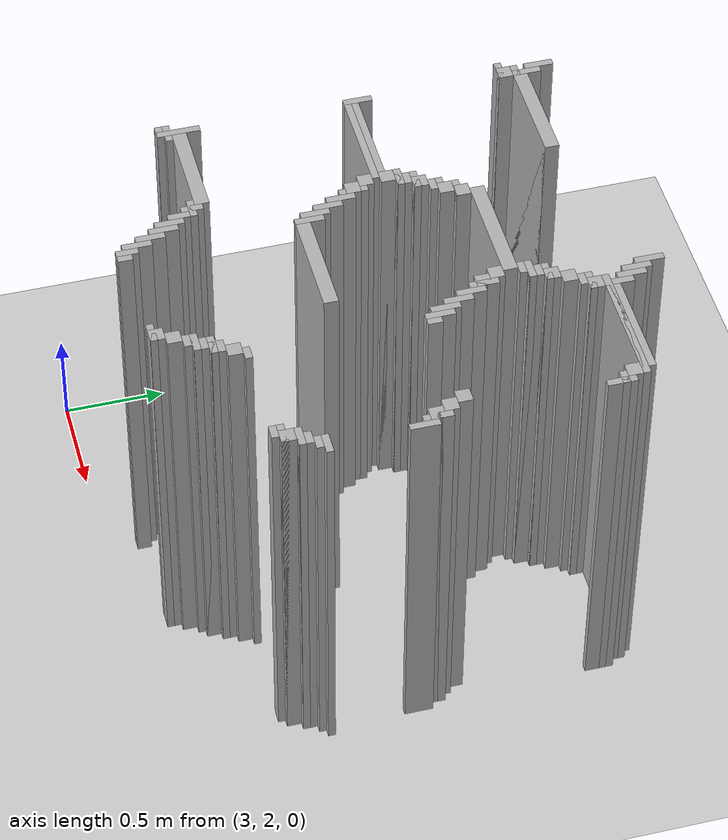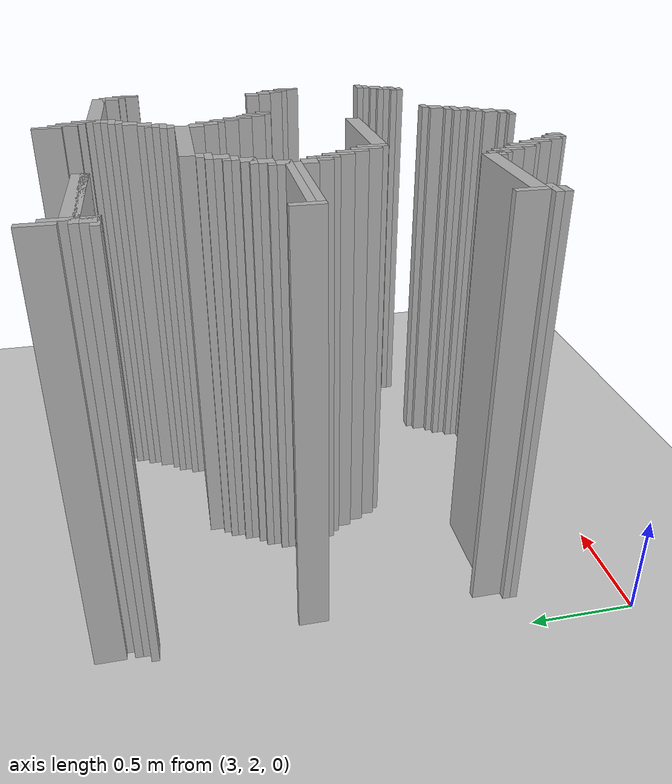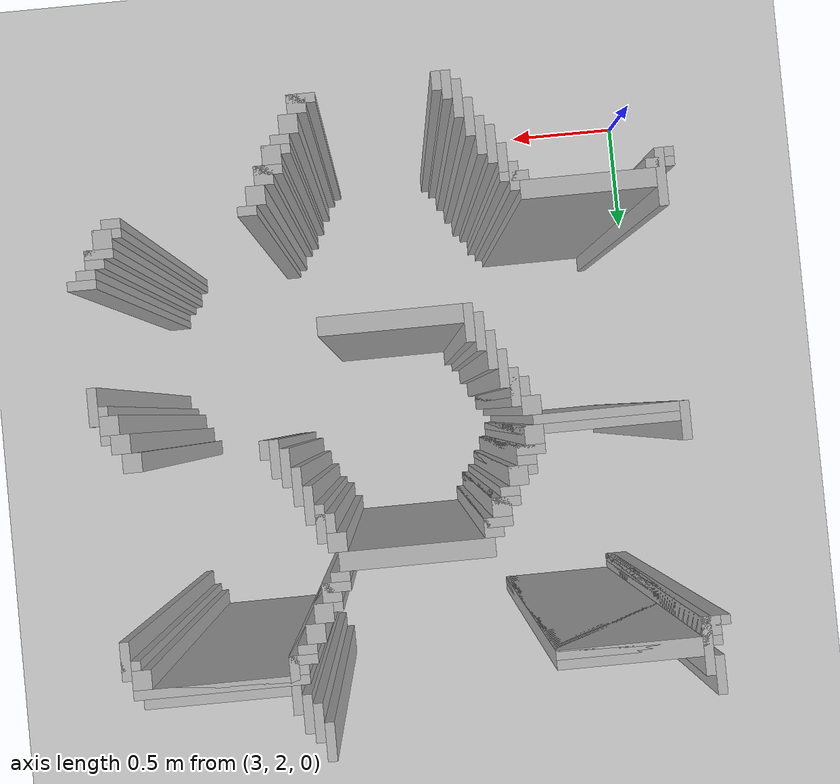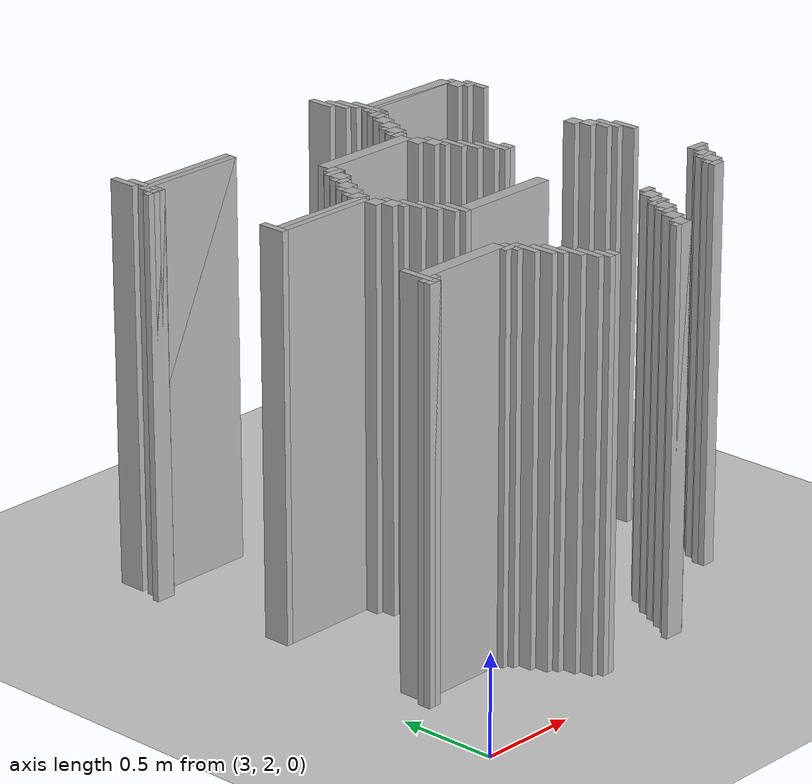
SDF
<sdf version="1.6">
 <world name="slam_world">
  <model name="ground_plane">
   <static>true</static>
   <link name="link">
    <collision name="collision">
     <geometry><plane><normal>0 0 1</normal><size>100 100</size></plane></geometry>
    </collision>
    <visual name="visual">
     <geometry><plane><normal>0 0 1</normal><size>100 100</size></plane></geometry>
     <material>
      <ambient>0.8 0.8 0.8 1</ambient>
      <diffuse>0.8 0.8 0.8 1</diffuse>
      <specular>0.8 0.8 0.8 1</specular>
     </material>
    </visual>
   </link>
  </model>
  <model name="wall_4284">
   <static>true</static>
   <pose>4.576566125290023 4.489559164733178 1.0 0 0 0</pose>
   <link name="link">
    <collision name="collision">
     <geometry><box><size>0.03480278422273782 0.13921113689095127 2.0</size></box></geometry>
    </collision>
    <visual name="visual">
     <geometry><box><size>0.03480278422273782 0.13921113689095127 2.0</size></box></geometry>
     <material><ambient>0.5 0.5 0.5 1</ambient><diffuse>0.7 0.7 0.7 1</diffuse></material>
    </visual>
   </link>
  </model>
  <model name="wall_4295">
   <static>true</static>
   <pose>4.611368909512761 4.419953596287703 1.0 0 0 0</pose>
   <link name="link">
    <collision name="collision">
     <geometry><box><size>0.03480278422273782 0.13921113689095127 2.0</size></box></geometry>
    </collision>
    <visual name="visual">
     <geometry><box><size>0.03480278422273782 0.13921113689095127 2.0</size></box></geometry>
     <material><ambient>0.5 0.5 0.5 1</ambient><diffuse>0.7 0.7 0.7 1</diffuse></material>
    </visual>
   </link>
  </model>
  <model name="wall_4305">
   <static>true</static>
   <pose>3.1844547563805103 4.385150812064965 1.0 0 0 0</pose>
   <link name="link">
    <collision name="collision">
     <geometry><box><size>0.03480278422273782 0.13921113689095127 2.0</size></box></geometry>
    </collision>
    <visual name="visual">
     <geometry><box><size>0.03480278422273782 0.13921113689095127 2.0</size></box></geometry>
     <material><ambient>0.5 0.5 0.5 1</ambient><diffuse>0.7 0.7 0.7 1</diffuse></material>
    </visual>
   </link>
  </model>
  <model name="wall_4306">
   <static>true</static>
   <pose>4.646171693735498 4.385150812064965 1.0 0 0 0</pose>
   <link name="link">
    <collision name="collision">
     <geometry><box><size>0.03480278422273782 0.13921113689095127 2.0</size></box></geometry>
    </collision>
    <visual name="visual">
     <geometry><box><size>0.03480278422273782 0.13921113689095127 2.0</size></box></geometry>
     <material><ambient>0.5 0.5 0.5 1</ambient><diffuse>0.7 0.7 0.7 1</diffuse></material>
    </visual>
   </link>
  </model>
  <model name="wall_4320">
   <static>true</static>
   <pose>3.219257540603248 4.280742459396752 1.0 0 0 0</pose>
   <link name="link">
    <collision name="collision">
     <geometry><box><size>0.03480278422273782 0.2088167053364269 2.0</size></box></geometry>
    </collision>
    <visual name="visual">
     <geometry><box><size>0.03480278422273782 0.2088167053364269 2.0</size></box></geometry>
     <material><ambient>0.5 0.5 0.5 1</ambient><diffuse>0.7 0.7 0.7 1</diffuse></material>
    </visual>
   </link>
  </model>
  <model name="wall_4321">
   <static>true</static>
   <pose>4.6809744779582365 4.280742459396752 1.0 0 0 0</pose>
   <link name="link">
    <collision name="collision">
     <geometry><box><size>0.03480278422273782 0.2088167053364269 2.0</size></box></geometry>
    </collision>
    <visual name="visual">
     <geometry><box><size>0.03480278422273782 0.2088167053364269 2.0</size></box></geometry>
     <material><ambient>0.5 0.5 0.5 1</ambient><diffuse>0.7 0.7 0.7 1</diffuse></material>
    </visual>
   </link>
  </model>
  <model name="wall_4336">
   <static>true</static>
   <pose>3.4976798143851506 4.280742459396752 1.0 0 0 0</pose>
   <link name="link">
    <collision name="collision">
     <geometry><box><size>0.5220417633410672 0.06960556844547564 2.0</size></box></geometry>
    </collision>
    <visual name="visual">
     <geometry><box><size>0.5220417633410672 0.06960556844547564 2.0</size></box></geometry>
     <material><ambient>0.5 0.5 0.5 1</ambient><diffuse>0.7 0.7 0.7 1</diffuse></material>
    </visual>
   </link>
  </model>
  <model name="wall_4337">
   <static>true</static>
   <pose>4.959396751740139 4.280742459396752 1.0 0 0 0</pose>
   <link name="link">
    <collision name="collision">
     <geometry><box><size>0.5220417633410672 0.06960556844547564 2.0</size></box></geometry>
    </collision>
    <visual name="visual">
     <geometry><box><size>0.5220417633410672 0.06960556844547564 2.0</size></box></geometry>
     <material><ambient>0.5 0.5 0.5 1</ambient><diffuse>0.7 0.7 0.7 1</diffuse></material>
    </visual>
   </link>
  </model>
  <model name="wall_4348">
   <static>true</static>
   <pose>3.4628770301624128 4.263341067285383 1.0 0 0 0</pose>
   <link name="link">
    <collision name="collision">
     <geometry><box><size>0.5916473317865429 0.03480278422273782 2.0</size></box></geometry>
    </collision>
    <visual name="visual">
     <geometry><box><size>0.5916473317865429 0.03480278422273782 2.0</size></box></geometry>
     <material><ambient>0.5 0.5 0.5 1</ambient><diffuse>0.7 0.7 0.7 1</diffuse></material>
    </visual>
   </link>
  </model>
  <model name="wall_4349">
   <static>true</static>
   <pose>4.94199535962877 4.263341067285383 1.0 0 0 0</pose>
   <link name="link">
    <collision name="collision">
     <geometry><box><size>0.6264501160092807 0.03480278422273782 2.0</size></box></geometry>
    </collision>
    <visual name="visual">
     <geometry><box><size>0.6264501160092807 0.03480278422273782 2.0</size></box></geometry>
     <material><ambient>0.5 0.5 0.5 1</ambient><diffuse>0.7 0.7 0.7 1</diffuse></material>
    </visual>
   </link>
  </model>
  <model name="wall_4360">
   <static>true</static>
   <pose>3.201856148491879 4.211136890951276 1.0 0 0 0</pose>
   <link name="link">
    <collision name="collision">
     <geometry><box><size>0.06960556844547564 0.06960556844547564 2.0</size></box></geometry>
    </collision>
    <visual name="visual">
     <geometry><box><size>0.06960556844547564 0.06960556844547564 2.0</size></box></geometry>
     <material><ambient>0.5 0.5 0.5 1</ambient><diffuse>0.7 0.7 0.7 1</diffuse></material>
    </visual>
   </link>
  </model>
  <model name="wall_4361">
   <static>true</static>
   <pose>4.663573085846868 4.211136890951276 1.0 0 0 0</pose>
   <link name="link">
    <collision name="collision">
     <geometry><box><size>0.06960556844547564 0.06960556844547564 2.0</size></box></geometry>
    </collision>
    <visual name="visual">
     <geometry><box><size>0.06960556844547564 0.06960556844547564 2.0</size></box></geometry>
     <material><ambient>0.5 0.5 0.5 1</ambient><diffuse>0.7 0.7 0.7 1</diffuse></material>
    </visual>
   </link>
  </model>
  <model name="wall_4362">
   <static>true</static>
   <pose>5.220417633410673 4.211136890951276 1.0 0 0 0</pose>
   <link name="link">
    <collision name="collision">
     <geometry><box><size>0.06960556844547564 0.06960556844547564 2.0</size></box></geometry>
    </collision>
    <visual name="visual">
     <geometry><box><size>0.06960556844547564 0.06960556844547564 2.0</size></box></geometry>
     <material><ambient>0.5 0.5 0.5 1</ambient><diffuse>0.7 0.7 0.7 1</diffuse></material>
    </visual>
   </link>
  </model>
  <model name="wall_4376">
   <static>true</static>
   <pose>3.1844547563805103 4.193735498839907 1.0 0 0 0</pose>
   <link name="link">
    <collision name="collision">
     <geometry><box><size>0.10440835266821345 0.03480278422273782 2.0</size></box></geometry>
    </collision>
    <visual name="visual">
     <geometry><box><size>0.10440835266821345 0.03480278422273782 2.0</size></box></geometry>
     <material><ambient>0.5 0.5 0.5 1</ambient><diffuse>0.7 0.7 0.7 1</diffuse></material>
    </visual>
   </link>
  </model>
  <model name="wall_4377">
   <static>true</static>
   <pose>4.646171693735498 4.193735498839907 1.0 0 0 0</pose>
   <link name="link">
    <collision name="collision">
     <geometry><box><size>0.10440835266821345 0.03480278422273782 2.0</size></box></geometry>
    </collision>
    <visual name="visual">
     <geometry><box><size>0.10440835266821345 0.03480278422273782 2.0</size></box></geometry>
     <material><ambient>0.5 0.5 0.5 1</ambient><diffuse>0.7 0.7 0.7 1</diffuse></material>
    </visual>
   </link>
  </model>
  <model name="wall_4378">
   <static>true</static>
   <pose>5.27262180974478 4.1415313225058 1.0 0 0 0</pose>
   <link name="link">
    <collision name="collision">
     <geometry><box><size>0.03480278422273782 0.13921113689095127 2.0</size></box></geometry>
    </collision>
    <visual name="visual">
     <geometry><box><size>0.03480278422273782 0.13921113689095127 2.0</size></box></geometry>
     <material><ambient>0.5 0.5 0.5 1</ambient><diffuse>0.7 0.7 0.7 1</diffuse></material>
    </visual>
   </link>
  </model>
  <model name="wall_4392">
   <static>true</static>
   <pose>4.6287703016241295 4.158932714617169 1.0 0 0 0</pose>
   <link name="link">
    <collision name="collision">
     <geometry><box><size>0.06960556844547564 0.03480278422273782 2.0</size></box></geometry>
    </collision>
    <visual name="visual">
     <geometry><box><size>0.06960556844547564 0.03480278422273782 2.0</size></box></geometry>
     <material><ambient>0.5 0.5 0.5 1</ambient><diffuse>0.7 0.7 0.7 1</diffuse></material>
    </visual>
   </link>
  </model>
  <model name="wall_4393">
   <static>true</static>
   <pose>5.25522041763341 4.158932714617169 1.0 0 0 0</pose>
   <link name="link">
    <collision name="collision">
     <geometry><box><size>0.06960556844547564 0.03480278422273782 2.0</size></box></geometry>
    </collision>
    <visual name="visual">
     <geometry><box><size>0.06960556844547564 0.03480278422273782 2.0</size></box></geometry>
     <material><ambient>0.5 0.5 0.5 1</ambient><diffuse>0.7 0.7 0.7 1</diffuse></material>
    </visual>
   </link>
  </model>
  <model name="wall_4406">
   <static>true</static>
   <pose>4.593967517401392 4.106728538283062 1.0 0 0 0</pose>
   <link name="link">
    <collision name="collision">
     <geometry><box><size>0.06960556844547564 0.06960556844547564 2.0</size></box></geometry>
    </collision>
    <visual name="visual">
     <geometry><box><size>0.06960556844547564 0.06960556844547564 2.0</size></box></geometry>
     <material><ambient>0.5 0.5 0.5 1</ambient><diffuse>0.7 0.7 0.7 1</diffuse></material>
    </visual>
   </link>
  </model>
  <model name="wall_4422">
   <static>true</static>
   <pose>4.559164733178654 4.037122969837587 1.0 0 0 0</pose>
   <link name="link">
    <collision name="collision">
     <geometry><box><size>0.06960556844547564 0.06960556844547564 2.0</size></box></geometry>
    </collision>
    <visual name="visual">
     <geometry><box><size>0.06960556844547564 0.06960556844547564 2.0</size></box></geometry>
     <material><ambient>0.5 0.5 0.5 1</ambient><diffuse>0.7 0.7 0.7 1</diffuse></material>
    </visual>
   </link>
  </model>
  <model name="wall_4438">
   <static>true</static>
   <pose>4.541763341067285 4.019721577726218 1.0 0 0 0</pose>
   <link name="link">
    <collision name="collision">
     <geometry><box><size>0.10440835266821345 0.03480278422273782 2.0</size></box></geometry>
    </collision>
    <visual name="visual">
     <geometry><box><size>0.10440835266821345 0.03480278422273782 2.0</size></box></geometry>
     <material><ambient>0.5 0.5 0.5 1</ambient><diffuse>0.7 0.7 0.7 1</diffuse></material>
    </visual>
   </link>
  </model>
  <model name="wall_4453">
   <static>true</static>
   <pose>4.524361948955916 3.967517401392111 1.0 0 0 0</pose>
   <link name="link">
    <collision name="collision">
     <geometry><box><size>0.06960556844547564 0.06960556844547564 2.0</size></box></geometry>
    </collision>
    <visual name="visual">
     <geometry><box><size>0.06960556844547564 0.06960556844547564 2.0</size></box></geometry>
     <material><ambient>0.5 0.5 0.5 1</ambient><diffuse>0.7 0.7 0.7 1</diffuse></material>
    </visual>
   </link>
  </model>
  <model name="wall_4463">
   <static>true</static>
   <pose>4.506960556844548 3.9501160092807424 1.0 0 0 0</pose>
   <link name="link">
    <collision name="collision">
     <geometry><box><size>0.10440835266821345 0.03480278422273782 2.0</size></box></geometry>
    </collision>
    <visual name="visual">
     <geometry><box><size>0.10440835266821345 0.03480278422273782 2.0</size></box></geometry>
     <material><ambient>0.5 0.5 0.5 1</ambient><diffuse>0.7 0.7 0.7 1</diffuse></material>
    </visual>
   </link>
  </model>
  <model name="wall_4478">
   <static>true</static>
   <pose>4.489559164733178 3.9153132250580045 1.0 0 0 0</pose>
   <link name="link">
    <collision name="collision">
     <geometry><box><size>0.06960556844547564 0.03480278422273782 2.0</size></box></geometry>
    </collision>
    <visual name="visual">
     <geometry><box><size>0.06960556844547564 0.03480278422273782 2.0</size></box></geometry>
     <material><ambient>0.5 0.5 0.5 1</ambient><diffuse>0.7 0.7 0.7 1</diffuse></material>
    </visual>
   </link>
  </model>
  <model name="wall_4488">
   <static>true</static>
   <pose>4.211136890951276 3.863109048723898 1.0 0 0 0</pose>
   <link name="link">
    <collision name="collision">
     <geometry><box><size>0.5568445475638051 0.06960556844547564 2.0</size></box></geometry>
    </collision>
    <visual name="visual">
     <geometry><box><size>0.5568445475638051 0.06960556844547564 2.0</size></box></geometry>
     <material><ambient>0.5 0.5 0.5 1</ambient><diffuse>0.7 0.7 0.7 1</diffuse></material>
    </visual>
   </link>
  </model>
  <model name="wall_4503">
   <static>true</static>
   <pose>3.932714617169373 3.793503480278422 1.0 0 0 0</pose>
   <link name="link">
    <collision name="collision">
     <geometry><box><size>0.06960556844547564 0.06960556844547564 2.0</size></box></geometry>
    </collision>
    <visual name="visual">
     <geometry><box><size>0.06960556844547564 0.06960556844547564 2.0</size></box></geometry>
     <material><ambient>0.5 0.5 0.5 1</ambient><diffuse>0.7 0.7 0.7 1</diffuse></material>
    </visual>
   </link>
  </model>
  <model name="wall_4504">
   <static>true</static>
   <pose>4.489559164733178 3.793503480278422 1.0 0 0 0</pose>
   <link name="link">
    <collision name="collision">
     <geometry><box><size>0.06960556844547564 0.06960556844547564 2.0</size></box></geometry>
    </collision>
    <visual name="visual">
     <geometry><box><size>0.06960556844547564 0.06960556844547564 2.0</size></box></geometry>
     <material><ambient>0.5 0.5 0.5 1</ambient><diffuse>0.7 0.7 0.7 1</diffuse></material>
    </visual>
   </link>
  </model>
  <model name="wall_4514">
   <static>true</static>
   <pose>3.9153132250580045 3.776102088167053 1.0 0 0 0</pose>
   <link name="link">
    <collision name="collision">
     <geometry><box><size>0.10440835266821345 0.03480278422273782 2.0</size></box></geometry>
    </collision>
    <visual name="visual">
     <geometry><box><size>0.10440835266821345 0.03480278422273782 2.0</size></box></geometry>
     <material><ambient>0.5 0.5 0.5 1</ambient><diffuse>0.7 0.7 0.7 1</diffuse></material>
    </visual>
   </link>
  </model>
  <model name="wall_4515">
   <static>true</static>
   <pose>4.541763341067285 3.7238979118329465 1.0 0 0 0</pose>
   <link name="link">
    <collision name="collision">
     <geometry><box><size>0.03480278422273782 0.13921113689095127 2.0</size></box></geometry>
    </collision>
    <visual name="visual">
     <geometry><box><size>0.03480278422273782 0.13921113689095127 2.0</size></box></geometry>
     <material><ambient>0.5 0.5 0.5 1</ambient><diffuse>0.7 0.7 0.7 1</diffuse></material>
    </visual>
   </link>
  </model>
  <model name="wall_4525">
   <static>true</static>
   <pose>3.897911832946636 3.7238979118329465 1.0 0 0 0</pose>
   <link name="link">
    <collision name="collision">
     <geometry><box><size>0.06960556844547564 0.06960556844547564 2.0</size></box></geometry>
    </collision>
    <visual name="visual">
     <geometry><box><size>0.06960556844547564 0.06960556844547564 2.0</size></box></geometry>
     <material><ambient>0.5 0.5 0.5 1</ambient><diffuse>0.7 0.7 0.7 1</diffuse></material>
    </visual>
   </link>
  </model>
  <model name="wall_4526">
   <static>true</static>
   <pose>4.524361948955916 3.7238979118329465 1.0 0 0 0</pose>
   <link name="link">
    <collision name="collision">
     <geometry><box><size>0.06960556844547564 0.06960556844547564 2.0</size></box></geometry>
    </collision>
    <visual name="visual">
     <geometry><box><size>0.06960556844547564 0.06960556844547564 2.0</size></box></geometry>
     <material><ambient>0.5 0.5 0.5 1</ambient><diffuse>0.7 0.7 0.7 1</diffuse></material>
    </visual>
   </link>
  </model>
  <model name="wall_4536">
   <static>true</static>
   <pose>3.8805104408352666 3.706496519721578 1.0 0 0 0</pose>
   <link name="link">
    <collision name="collision">
     <geometry><box><size>0.10440835266821345 0.03480278422273782 2.0</size></box></geometry>
    </collision>
    <visual name="visual">
     <geometry><box><size>0.10440835266821345 0.03480278422273782 2.0</size></box></geometry>
     <material><ambient>0.5 0.5 0.5 1</ambient><diffuse>0.7 0.7 0.7 1</diffuse></material>
    </visual>
   </link>
  </model>
  <model name="wall_4537">
   <static>true</static>
   <pose>4.576566125290023 3.6542923433874708 1.0 0 0 0</pose>
   <link name="link">
    <collision name="collision">
     <geometry><box><size>0.03480278422273782 0.13921113689095127 2.0</size></box></geometry>
    </collision>
    <visual name="visual">
     <geometry><box><size>0.03480278422273782 0.13921113689095127 2.0</size></box></geometry>
     <material><ambient>0.5 0.5 0.5 1</ambient><diffuse>0.7 0.7 0.7 1</diffuse></material>
    </visual>
   </link>
  </model>
  <model name="wall_4545">
   <static>true</static>
   <pose>3.863109048723898 3.67169373549884 1.0 0 0 0</pose>
   <link name="link">
    <collision name="collision">
     <geometry><box><size>0.06960556844547564 0.03480278422273782 2.0</size></box></geometry>
    </collision>
    <visual name="visual">
     <geometry><box><size>0.06960556844547564 0.03480278422273782 2.0</size></box></geometry>
     <material><ambient>0.5 0.5 0.5 1</ambient><diffuse>0.7 0.7 0.7 1</diffuse></material>
    </visual>
   </link>
  </model>
  <model name="wall_4551">
   <static>true</static>
   <pose>3.82830626450116 3.619489559164733 1.0 0 0 0</pose>
   <link name="link">
    <collision name="collision">
     <geometry><box><size>0.06960556844547564 0.06960556844547564 2.0</size></box></geometry>
    </collision>
    <visual name="visual">
     <geometry><box><size>0.06960556844547564 0.06960556844547564 2.0</size></box></geometry>
     <material><ambient>0.5 0.5 0.5 1</ambient><diffuse>0.7 0.7 0.7 1</diffuse></material>
    </visual>
   </link>
  </model>
  <model name="wall_4552">
   <static>true</static>
   <pose>4.611368909512761 3.584686774941995 1.0 0 0 0</pose>
   <link name="link">
    <collision name="collision">
     <geometry><box><size>0.03480278422273782 0.13921113689095127 2.0</size></box></geometry>
    </collision>
    <visual name="visual">
     <geometry><box><size>0.03480278422273782 0.13921113689095127 2.0</size></box></geometry>
     <material><ambient>0.5 0.5 0.5 1</ambient><diffuse>0.7 0.7 0.7 1</diffuse></material>
    </visual>
   </link>
  </model>
  <model name="wall_4560">
   <static>true</static>
   <pose>3.810904872389791 3.602088167053364 1.0 0 0 0</pose>
   <link name="link">
    <collision name="collision">
     <geometry><box><size>0.10440835266821345 0.03480278422273782 2.0</size></box></geometry>
    </collision>
    <visual name="visual">
     <geometry><box><size>0.10440835266821345 0.03480278422273782 2.0</size></box></geometry>
     <material><ambient>0.5 0.5 0.5 1</ambient><diffuse>0.7 0.7 0.7 1</diffuse></material>
    </visual>
   </link>
  </model>
  <model name="wall_4566">
   <static>true</static>
   <pose>3.793503480278422 3.549883990719257 1.0 0 0 0</pose>
   <link name="link">
    <collision name="collision">
     <geometry><box><size>0.06960556844547564 0.06960556844547564 2.0</size></box></geometry>
    </collision>
    <visual name="visual">
     <geometry><box><size>0.06960556844547564 0.06960556844547564 2.0</size></box></geometry>
     <material><ambient>0.5 0.5 0.5 1</ambient><diffuse>0.7 0.7 0.7 1</diffuse></material>
    </visual>
   </link>
  </model>
  <model name="wall_4567">
   <static>true</static>
   <pose>4.646171693735498 3.51508120649652 1.0 0 0 0</pose>
   <link name="link">
    <collision name="collision">
     <geometry><box><size>0.03480278422273782 0.13921113689095127 2.0</size></box></geometry>
    </collision>
    <visual name="visual">
     <geometry><box><size>0.03480278422273782 0.13921113689095127 2.0</size></box></geometry>
     <material><ambient>0.5 0.5 0.5 1</ambient><diffuse>0.7 0.7 0.7 1</diffuse></material>
    </visual>
   </link>
  </model>
  <model name="wall_4576">
   <static>true</static>
   <pose>3.219257540603248 3.480278422273782 1.0 0 0 0</pose>
   <link name="link">
    <collision name="collision">
     <geometry><box><size>0.03480278422273782 0.13921113689095127 2.0</size></box></geometry>
    </collision>
    <visual name="visual">
     <geometry><box><size>0.03480278422273782 0.13921113689095127 2.0</size></box></geometry>
     <material><ambient>0.5 0.5 0.5 1</ambient><diffuse>0.7 0.7 0.7 1</diffuse></material>
    </visual>
   </link>
  </model>
  <model name="wall_4577">
   <static>true</static>
   <pose>3.776102088167053 3.5324825986078885 1.0 0 0 0</pose>
   <link name="link">
    <collision name="collision">
     <geometry><box><size>0.10440835266821345 0.03480278422273782 2.0</size></box></geometry>
    </collision>
    <visual name="visual">
     <geometry><box><size>0.10440835266821345 0.03480278422273782 2.0</size></box></geometry>
     <material><ambient>0.5 0.5 0.5 1</ambient><diffuse>0.7 0.7 0.7 1</diffuse></material>
    </visual>
   </link>
  </model>
  <model name="wall_4578">
   <static>true</static>
   <pose>4.6809744779582365 3.480278422273782 1.0 0 0 0</pose>
   <link name="link">
    <collision name="collision">
     <geometry><box><size>0.03480278422273782 0.13921113689095127 2.0</size></box></geometry>
    </collision>
    <visual name="visual">
     <geometry><box><size>0.03480278422273782 0.13921113689095127 2.0</size></box></geometry>
     <material><ambient>0.5 0.5 0.5 1</ambient><diffuse>0.7 0.7 0.7 1</diffuse></material>
    </visual>
   </link>
  </model>
  <model name="wall_4586">
   <static>true</static>
   <pose>3.7587006960556844 3.480278422273782 1.0 0 0 0</pose>
   <link name="link">
    <collision name="collision">
     <geometry><box><size>0.06960556844547564 0.06960556844547564 2.0</size></box></geometry>
    </collision>
    <visual name="visual">
     <geometry><box><size>0.06960556844547564 0.06960556844547564 2.0</size></box></geometry>
     <material><ambient>0.5 0.5 0.5 1</ambient><diffuse>0.7 0.7 0.7 1</diffuse></material>
    </visual>
   </link>
  </model>
  <model name="wall_4592">
   <static>true</static>
   <pose>3.51508120649652 3.4628770301624128 1.0 0 0 0</pose>
   <link name="link">
    <collision name="collision">
     <geometry><box><size>0.5568445475638051 0.03480278422273782 2.0</size></box></geometry>
    </collision>
    <visual name="visual">
     <geometry><box><size>0.5568445475638051 0.03480278422273782 2.0</size></box></geometry>
     <material><ambient>0.5 0.5 0.5 1</ambient><diffuse>0.7 0.7 0.7 1</diffuse></material>
    </visual>
   </link>
  </model>
  <model name="wall_4593">
   <static>true</static>
   <pose>4.715777262180974 3.445475638051044 1.0 0 0 0</pose>
   <link name="link">
    <collision name="collision">
     <geometry><box><size>0.03480278422273782 0.06960556844547564 2.0</size></box></geometry>
    </collision>
    <visual name="visual">
     <geometry><box><size>0.03480278422273782 0.06960556844547564 2.0</size></box></geometry>
     <material><ambient>0.5 0.5 0.5 1</ambient><diffuse>0.7 0.7 0.7 1</diffuse></material>
    </visual>
   </link>
  </model>
  <model name="wall_4594">
   <static>true</static>
   <pose>5.185614849187935 3.445475638051044 1.0 0 0 0</pose>
   <link name="link">
    <collision name="collision">
     <geometry><box><size>0.06960556844547564 0.06960556844547564 2.0</size></box></geometry>
    </collision>
    <visual name="visual">
     <geometry><box><size>0.06960556844547564 0.06960556844547564 2.0</size></box></geometry>
     <material><ambient>0.5 0.5 0.5 1</ambient><diffuse>0.7 0.7 0.7 1</diffuse></material>
    </visual>
   </link>
  </model>
  <model name="wall_4605">
   <static>true</static>
   <pose>3.4976798143851506 3.428074245939675 1.0 0 0 0</pose>
   <link name="link">
    <collision name="collision">
     <geometry><box><size>0.5220417633410672 0.03480278422273782 2.0</size></box></geometry>
    </collision>
    <visual name="visual">
     <geometry><box><size>0.5220417633410672 0.03480278422273782 2.0</size></box></geometry>
     <material><ambient>0.5 0.5 0.5 1</ambient><diffuse>0.7 0.7 0.7 1</diffuse></material>
    </visual>
   </link>
  </model>
  <model name="wall_4612">
   <static>true</static>
   <pose>3.7587006960556844 3.3758700696055683 1.0 0 0 0</pose>
   <link name="link">
    <collision name="collision">
     <geometry><box><size>0.06960556844547564 0.06960556844547564 2.0</size></box></geometry>
    </collision>
    <visual name="visual">
     <geometry><box><size>0.06960556844547564 0.06960556844547564 2.0</size></box></geometry>
     <material><ambient>0.5 0.5 0.5 1</ambient><diffuse>0.7 0.7 0.7 1</diffuse></material>
    </visual>
   </link>
  </model>
  <model name="wall_4613">
   <static>true</static>
   <pose>5.220417633410673 3.3758700696055683 1.0 0 0 0</pose>
   <link name="link">
    <collision name="collision">
     <geometry><box><size>0.06960556844547564 0.06960556844547564 2.0</size></box></geometry>
    </collision>
    <visual name="visual">
     <geometry><box><size>0.06960556844547564 0.06960556844547564 2.0</size></box></geometry>
     <material><ambient>0.5 0.5 0.5 1</ambient><diffuse>0.7 0.7 0.7 1</diffuse></material>
    </visual>
   </link>
  </model>
  <model name="wall_4629">
   <static>true</static>
   <pose>3.810904872389791 3.3062645011600926 1.0 0 0 0</pose>
   <link name="link">
    <collision name="collision">
     <geometry><box><size>0.03480278422273782 0.13921113689095127 2.0</size></box></geometry>
    </collision>
    <visual name="visual">
     <geometry><box><size>0.03480278422273782 0.13921113689095127 2.0</size></box></geometry>
     <material><ambient>0.5 0.5 0.5 1</ambient><diffuse>0.7 0.7 0.7 1</diffuse></material>
    </visual>
   </link>
  </model>
  <model name="wall_4630">
   <static>true</static>
   <pose>5.27262180974478 3.3062645011600926 1.0 0 0 0</pose>
   <link name="link">
    <collision name="collision">
     <geometry><box><size>0.03480278422273782 0.13921113689095127 2.0</size></box></geometry>
    </collision>
    <visual name="visual">
     <geometry><box><size>0.03480278422273782 0.13921113689095127 2.0</size></box></geometry>
     <material><ambient>0.5 0.5 0.5 1</ambient><diffuse>0.7 0.7 0.7 1</diffuse></material>
    </visual>
   </link>
  </model>
  <model name="wall_4646">
   <static>true</static>
   <pose>3.793503480278422 3.3062645011600926 1.0 0 0 0</pose>
   <link name="link">
    <collision name="collision">
     <geometry><box><size>0.06960556844547564 0.06960556844547564 2.0</size></box></geometry>
    </collision>
    <visual name="visual">
     <geometry><box><size>0.06960556844547564 0.06960556844547564 2.0</size></box></geometry>
     <material><ambient>0.5 0.5 0.5 1</ambient><diffuse>0.7 0.7 0.7 1</diffuse></material>
    </visual>
   </link>
  </model>
  <model name="wall_4647">
   <static>true</static>
   <pose>5.25522041763341 3.3062645011600926 1.0 0 0 0</pose>
   <link name="link">
    <collision name="collision">
     <geometry><box><size>0.06960556844547564 0.06960556844547564 2.0</size></box></geometry>
    </collision>
    <visual name="visual">
     <geometry><box><size>0.06960556844547564 0.06960556844547564 2.0</size></box></geometry>
     <material><ambient>0.5 0.5 0.5 1</ambient><diffuse>0.7 0.7 0.7 1</diffuse></material>
    </visual>
   </link>
  </model>
  <model name="wall_4663">
   <static>true</static>
   <pose>3.845707656612529 3.236658932714617 1.0 0 0 0</pose>
   <link name="link">
    <collision name="collision">
     <geometry><box><size>0.03480278422273782 0.13921113689095127 2.0</size></box></geometry>
    </collision>
    <visual name="visual">
     <geometry><box><size>0.03480278422273782 0.13921113689095127 2.0</size></box></geometry>
     <material><ambient>0.5 0.5 0.5 1</ambient><diffuse>0.7 0.7 0.7 1</diffuse></material>
    </visual>
   </link>
  </model>
  <model name="wall_4664">
   <static>true</static>
   <pose>5.307424593967517 3.236658932714617 1.0 0 0 0</pose>
   <link name="link">
    <collision name="collision">
     <geometry><box><size>0.03480278422273782 0.13921113689095127 2.0</size></box></geometry>
    </collision>
    <visual name="visual">
     <geometry><box><size>0.03480278422273782 0.13921113689095127 2.0</size></box></geometry>
     <material><ambient>0.5 0.5 0.5 1</ambient><diffuse>0.7 0.7 0.7 1</diffuse></material>
    </visual>
   </link>
  </model>
  <model name="wall_4688">
   <static>true</static>
   <pose>3.8805104408352666 3.167053364269141 1.0 0 0 0</pose>
   <link name="link">
    <collision name="collision">
     <geometry><box><size>0.03480278422273782 0.13921113689095127 2.0</size></box></geometry>
    </collision>
    <visual name="visual">
     <geometry><box><size>0.03480278422273782 0.13921113689095127 2.0</size></box></geometry>
     <material><ambient>0.5 0.5 0.5 1</ambient><diffuse>0.7 0.7 0.7 1</diffuse></material>
    </visual>
   </link>
  </model>
  <model name="wall_4705">
   <static>true</static>
   <pose>3.9153132250580045 3.097447795823666 1.0 0 0 0</pose>
   <link name="link">
    <collision name="collision">
     <geometry><box><size>0.03480278422273782 0.13921113689095127 2.0</size></box></geometry>
    </collision>
    <visual name="visual">
     <geometry><box><size>0.03480278422273782 0.13921113689095127 2.0</size></box></geometry>
     <material><ambient>0.5 0.5 0.5 1</ambient><diffuse>0.7 0.7 0.7 1</diffuse></material>
    </visual>
   </link>
  </model>
  <model name="wall_4722">
   <static>true</static>
   <pose>3.9501160092807424 3.062645011600928 1.0 0 0 0</pose>
   <link name="link">
    <collision name="collision">
     <geometry><box><size>0.03480278422273782 0.13921113689095127 2.0</size></box></geometry>
    </collision>
    <visual name="visual">
     <geometry><box><size>0.03480278422273782 0.13921113689095127 2.0</size></box></geometry>
     <material><ambient>0.5 0.5 0.5 1</ambient><diffuse>0.7 0.7 0.7 1</diffuse></material>
    </visual>
   </link>
  </model>
  <model name="wall_4746">
   <static>true</static>
   <pose>4.228538283062645 3.02784222737819 1.0 0 0 0</pose>
   <link name="link">
    <collision name="collision">
     <geometry><box><size>0.5220417633410672 0.06960556844547564 2.0</size></box></geometry>
    </collision>
    <visual name="visual">
     <geometry><box><size>0.5220417633410672 0.06960556844547564 2.0</size></box></geometry>
     <material><ambient>0.5 0.5 0.5 1</ambient><diffuse>0.7 0.7 0.7 1</diffuse></material>
    </visual>
   </link>
  </model>
  <model name="wall_4826">
   <static>true</static>
   <pose>5.307424593967517 2.8016241299303943 1.0 0 0 0</pose>
   <link name="link">
    <collision name="collision">
     <geometry><box><size>0.10440835266821345 0.03480278422273782 2.0</size></box></geometry>
    </collision>
    <visual name="visual">
     <geometry><box><size>0.10440835266821345 0.03480278422273782 2.0</size></box></geometry>
     <material><ambient>0.5 0.5 0.5 1</ambient><diffuse>0.7 0.7 0.7 1</diffuse></material>
    </visual>
   </link>
  </model>
  <model name="wall_4836">
   <static>true</static>
   <pose>5.290023201856148 2.7668213457076565 1.0 0 0 0</pose>
   <link name="link">
    <collision name="collision">
     <geometry><box><size>0.06960556844547564 0.03480278422273782 2.0</size></box></geometry>
    </collision>
    <visual name="visual">
     <geometry><box><size>0.06960556844547564 0.03480278422273782 2.0</size></box></geometry>
     <material><ambient>0.5 0.5 0.5 1</ambient><diffuse>0.7 0.7 0.7 1</diffuse></material>
    </visual>
   </link>
  </model>
  <model name="wall_4843">
   <static>true</static>
   <pose>5.25522041763341 2.71461716937355 1.0 0 0 0</pose>
   <link name="link">
    <collision name="collision">
     <geometry><box><size>0.06960556844547564 0.06960556844547564 2.0</size></box></geometry>
    </collision>
    <visual name="visual">
     <geometry><box><size>0.06960556844547564 0.06960556844547564 2.0</size></box></geometry>
     <material><ambient>0.5 0.5 0.5 1</ambient><diffuse>0.7 0.7 0.7 1</diffuse></material>
    </visual>
   </link>
  </model>
  <model name="wall_4855">
   <static>true</static>
   <pose>3.219257540603248 2.6102088167053363 1.0 0 0 0</pose>
   <link name="link">
    <collision name="collision">
     <geometry><box><size>0.03480278422273782 0.2088167053364269 2.0</size></box></geometry>
    </collision>
    <visual name="visual">
     <geometry><box><size>0.03480278422273782 0.2088167053364269 2.0</size></box></geometry>
     <material><ambient>0.5 0.5 0.5 1</ambient><diffuse>0.7 0.7 0.7 1</diffuse></material>
    </visual>
   </link>
  </model>
  <model name="wall_4856">
   <static>true</static>
   <pose>5.237819025522041 2.6972157772621808 1.0 0 0 0</pose>
   <link name="link">
    <collision name="collision">
     <geometry><box><size>0.10440835266821345 0.03480278422273782 2.0</size></box></geometry>
    </collision>
    <visual name="visual">
     <geometry><box><size>0.10440835266821345 0.03480278422273782 2.0</size></box></geometry>
     <material><ambient>0.5 0.5 0.5 1</ambient><diffuse>0.7 0.7 0.7 1</diffuse></material>
    </visual>
   </link>
  </model>
  <model name="wall_4866">
   <static>true</static>
   <pose>5.220417633410673 2.645011600928074 1.0 0 0 0</pose>
   <link name="link">
    <collision name="collision">
     <geometry><box><size>0.06960556844547564 0.06960556844547564 2.0</size></box></geometry>
    </collision>
    <visual name="visual">
     <geometry><box><size>0.06960556844547564 0.06960556844547564 2.0</size></box></geometry>
     <material><ambient>0.5 0.5 0.5 1</ambient><diffuse>0.7 0.7 0.7 1</diffuse></material>
    </visual>
   </link>
  </model>
  <model name="wall_4872">
   <static>true</static>
   <pose>3.480278422273782 2.6102088167053363 1.0 0 0 0</pose>
   <link name="link">
    <collision name="collision">
     <geometry><box><size>0.4872389791183295 0.06960556844547564 2.0</size></box></geometry>
    </collision>
    <visual name="visual">
     <geometry><box><size>0.4872389791183295 0.06960556844547564 2.0</size></box></geometry>
     <material><ambient>0.5 0.5 0.5 1</ambient><diffuse>0.7 0.7 0.7 1</diffuse></material>
    </visual>
   </link>
  </model>
  <model name="wall_4873">
   <static>true</static>
   <pose>5.203016241299304 2.627610208816705 1.0 0 0 0</pose>
   <link name="link">
    <collision name="collision">
     <geometry><box><size>0.10440835266821345 0.03480278422273782 2.0</size></box></geometry>
    </collision>
    <visual name="visual">
     <geometry><box><size>0.10440835266821345 0.03480278422273782 2.0</size></box></geometry>
     <material><ambient>0.5 0.5 0.5 1</ambient><diffuse>0.7 0.7 0.7 1</diffuse></material>
    </visual>
   </link>
  </model>
  <model name="wall_4886">
   <static>true</static>
   <pose>3.741299303944315 2.5580046403712298 1.0 0 0 0</pose>
   <link name="link">
    <collision name="collision">
     <geometry><box><size>0.03480278422273782 0.10440835266821345 2.0</size></box></geometry>
    </collision>
    <visual name="visual">
     <geometry><box><size>0.03480278422273782 0.10440835266821345 2.0</size></box></geometry>
     <material><ambient>0.5 0.5 0.5 1</ambient><diffuse>0.7 0.7 0.7 1</diffuse></material>
    </visual>
   </link>
  </model>
  <model name="wall_4887">
   <static>true</static>
   <pose>4.698375870069605 2.5928074245939676 1.0 0 0 0</pose>
   <link name="link">
    <collision name="collision">
     <geometry><box><size>0.06960556844547564 0.03480278422273782 2.0</size></box></geometry>
    </collision>
    <visual name="visual">
     <geometry><box><size>0.06960556844547564 0.03480278422273782 2.0</size></box></geometry>
     <material><ambient>0.5 0.5 0.5 1</ambient><diffuse>0.7 0.7 0.7 1</diffuse></material>
    </visual>
   </link>
  </model>
  <model name="wall_4888">
   <static>true</static>
   <pose>5.185614849187935 2.5928074245939676 1.0 0 0 0</pose>
   <link name="link">
    <collision name="collision">
     <geometry><box><size>0.06960556844547564 0.03480278422273782 2.0</size></box></geometry>
    </collision>
    <visual name="visual">
     <geometry><box><size>0.06960556844547564 0.03480278422273782 2.0</size></box></geometry>
     <material><ambient>0.5 0.5 0.5 1</ambient><diffuse>0.7 0.7 0.7 1</diffuse></material>
    </visual>
   </link>
  </model>
  <model name="wall_4899">
   <static>true</static>
   <pose>3.219257540603248 2.5580046403712298 1.0 0 0 0</pose>
   <link name="link">
    <collision name="collision">
     <geometry><box><size>0.10440835266821345 0.03480278422273782 2.0</size></box></geometry>
    </collision>
    <visual name="visual">
     <geometry><box><size>0.10440835266821345 0.03480278422273782 2.0</size></box></geometry>
     <material><ambient>0.5 0.5 0.5 1</ambient><diffuse>0.7 0.7 0.7 1</diffuse></material>
    </visual>
   </link>
  </model>
  <model name="wall_4900">
   <static>true</static>
   <pose>3.741299303944315 2.5580046403712298 1.0 0 0 0</pose>
   <link name="link">
    <collision name="collision">
     <geometry><box><size>0.10440835266821345 0.03480278422273782 2.0</size></box></geometry>
    </collision>
    <visual name="visual">
     <geometry><box><size>0.10440835266821345 0.03480278422273782 2.0</size></box></geometry>
     <material><ambient>0.5 0.5 0.5 1</ambient><diffuse>0.7 0.7 0.7 1</diffuse></material>
    </visual>
   </link>
  </model>
  <model name="wall_4901">
   <static>true</static>
   <pose>4.663573085846868 2.5406032482598606 1.0 0 0 0</pose>
   <link name="link">
    <collision name="collision">
     <geometry><box><size>0.06960556844547564 0.06960556844547564 2.0</size></box></geometry>
    </collision>
    <visual name="visual">
     <geometry><box><size>0.06960556844547564 0.06960556844547564 2.0</size></box></geometry>
     <material><ambient>0.5 0.5 0.5 1</ambient><diffuse>0.7 0.7 0.7 1</diffuse></material>
    </visual>
   </link>
  </model>
  <model name="wall_4915">
   <static>true</static>
   <pose>3.201856148491879 2.523201856148492 1.0 0 0 0</pose>
   <link name="link">
    <collision name="collision">
     <geometry><box><size>0.06960556844547564 0.03480278422273782 2.0</size></box></geometry>
    </collision>
    <visual name="visual">
     <geometry><box><size>0.06960556844547564 0.03480278422273782 2.0</size></box></geometry>
     <material><ambient>0.5 0.5 0.5 1</ambient><diffuse>0.7 0.7 0.7 1</diffuse></material>
    </visual>
   </link>
  </model>
  <model name="wall_4916">
   <static>true</static>
   <pose>3.776102088167053 2.488399071925754 1.0 0 0 0</pose>
   <link name="link">
    <collision name="collision">
     <geometry><box><size>0.03480278422273782 0.10440835266821345 2.0</size></box></geometry>
    </collision>
    <visual name="visual">
     <geometry><box><size>0.03480278422273782 0.10440835266821345 2.0</size></box></geometry>
     <material><ambient>0.5 0.5 0.5 1</ambient><diffuse>0.7 0.7 0.7 1</diffuse></material>
    </visual>
   </link>
  </model>
  <model name="wall_4927">
   <static>true</static>
   <pose>3.810904872389791 2.436194895591647 1.0 0 0 0</pose>
   <link name="link">
    <collision name="collision">
     <geometry><box><size>0.03480278422273782 0.13921113689095127 2.0</size></box></geometry>
    </collision>
    <visual name="visual">
     <geometry><box><size>0.03480278422273782 0.13921113689095127 2.0</size></box></geometry>
     <material><ambient>0.5 0.5 0.5 1</ambient><diffuse>0.7 0.7 0.7 1</diffuse></material>
    </visual>
   </link>
  </model>
  <model name="wall_4928">
   <static>true</static>
   <pose>4.6287703016241295 2.470997679814385 1.0 0 0 0</pose>
   <link name="link">
    <collision name="collision">
     <geometry><box><size>0.06960556844547564 0.06960556844547564 2.0</size></box></geometry>
    </collision>
    <visual name="visual">
     <geometry><box><size>0.06960556844547564 0.06960556844547564 2.0</size></box></geometry>
     <material><ambient>0.5 0.5 0.5 1</ambient><diffuse>0.7 0.7 0.7 1</diffuse></material>
    </visual>
   </link>
  </model>
  <model name="wall_4944">
   <static>true</static>
   <pose>3.845707656612529 2.4013921113689096 1.0 0 0 0</pose>
   <link name="link">
    <collision name="collision">
     <geometry><box><size>0.03480278422273782 0.13921113689095127 2.0</size></box></geometry>
    </collision>
    <visual name="visual">
     <geometry><box><size>0.03480278422273782 0.13921113689095127 2.0</size></box></geometry>
     <material><ambient>0.5 0.5 0.5 1</ambient><diffuse>0.7 0.7 0.7 1</diffuse></material>
    </visual>
   </link>
  </model>
  <model name="wall_4945">
   <static>true</static>
   <pose>4.611368909512761 2.453596287703016 1.0 0 0 0</pose>
   <link name="link">
    <collision name="collision">
     <geometry><box><size>0.10440835266821345 0.03480278422273782 2.0</size></box></geometry>
    </collision>
    <visual name="visual">
     <geometry><box><size>0.10440835266821345 0.03480278422273782 2.0</size></box></geometry>
     <material><ambient>0.5 0.5 0.5 1</ambient><diffuse>0.7 0.7 0.7 1</diffuse></material>
    </visual>
   </link>
  </model>
  <model name="wall_4960">
   <static>true</static>
   <pose>4.593967517401392 2.4013921113689096 1.0 0 0 0</pose>
   <link name="link">
    <collision name="collision">
     <geometry><box><size>0.06960556844547564 0.06960556844547564 2.0</size></box></geometry>
    </collision>
    <visual name="visual">
     <geometry><box><size>0.06960556844547564 0.06960556844547564 2.0</size></box></geometry>
     <material><ambient>0.5 0.5 0.5 1</ambient><diffuse>0.7 0.7 0.7 1</diffuse></material>
    </visual>
   </link>
  </model>
  <model name="wall_4975">
   <static>true</static>
   <pose>3.8805104408352666 2.331786542923434 1.0 0 0 0</pose>
   <link name="link">
    <collision name="collision">
     <geometry><box><size>0.03480278422273782 0.13921113689095127 2.0</size></box></geometry>
    </collision>
    <visual name="visual">
     <geometry><box><size>0.03480278422273782 0.13921113689095127 2.0</size></box></geometry>
     <material><ambient>0.5 0.5 0.5 1</ambient><diffuse>0.7 0.7 0.7 1</diffuse></material>
    </visual>
   </link>
  </model>
  <model name="wall_4976">
   <static>true</static>
   <pose>4.576566125290023 2.3839907192575405 1.0 0 0 0</pose>
   <link name="link">
    <collision name="collision">
     <geometry><box><size>0.10440835266821345 0.03480278422273782 2.0</size></box></geometry>
    </collision>
    <visual name="visual">
     <geometry><box><size>0.10440835266821345 0.03480278422273782 2.0</size></box></geometry>
     <material><ambient>0.5 0.5 0.5 1</ambient><diffuse>0.7 0.7 0.7 1</diffuse></material>
    </visual>
   </link>
  </model>
  <model name="wall_4990">
   <static>true</static>
   <pose>4.559164733178654 2.3491879350348026 1.0 0 0 0</pose>
   <link name="link">
    <collision name="collision">
     <geometry><box><size>0.06960556844547564 0.03480278422273782 2.0</size></box></geometry>
    </collision>
    <visual name="visual">
     <geometry><box><size>0.06960556844547564 0.03480278422273782 2.0</size></box></geometry>
     <material><ambient>0.5 0.5 0.5 1</ambient><diffuse>0.7 0.7 0.7 1</diffuse></material>
    </visual>
   </link>
  </model>
  <model name="wall_5001">
   <static>true</static>
   <pose>3.9153132250580045 2.262180974477958 1.0 0 0 0</pose>
   <link name="link">
    <collision name="collision">
     <geometry><box><size>0.03480278422273782 0.13921113689095127 2.0</size></box></geometry>
    </collision>
    <visual name="visual">
     <geometry><box><size>0.03480278422273782 0.13921113689095127 2.0</size></box></geometry>
     <material><ambient>0.5 0.5 0.5 1</ambient><diffuse>0.7 0.7 0.7 1</diffuse></material>
    </visual>
   </link>
  </model>
  <model name="wall_5002">
   <static>true</static>
   <pose>4.524361948955916 2.296983758700696 1.0 0 0 0</pose>
   <link name="link">
    <collision name="collision">
     <geometry><box><size>0.06960556844547564 0.06960556844547564 2.0</size></box></geometry>
    </collision>
    <visual name="visual">
     <geometry><box><size>0.06960556844547564 0.06960556844547564 2.0</size></box></geometry>
     <material><ambient>0.5 0.5 0.5 1</ambient><diffuse>0.7 0.7 0.7 1</diffuse></material>
    </visual>
   </link>
  </model>
  <model name="wall_5018">
   <static>true</static>
   <pose>3.9501160092807424 2.2099767981438516 1.0 0 0 0</pose>
   <link name="link">
    <collision name="collision">
     <geometry><box><size>0.03480278422273782 0.10440835266821345 2.0</size></box></geometry>
    </collision>
    <visual name="visual">
     <geometry><box><size>0.03480278422273782 0.10440835266821345 2.0</size></box></geometry>
     <material><ambient>0.5 0.5 0.5 1</ambient><diffuse>0.7 0.7 0.7 1</diffuse></material>
    </visual>
   </link>
  </model>
  <model name="wall_5019">
   <static>true</static>
   <pose>4.489559164733178 2.2273781902552203 1.0 0 0 0</pose>
   <link name="link">
    <collision name="collision">
     <geometry><box><size>0.06960556844547564 0.06960556844547564 2.0</size></box></geometry>
    </collision>
    <visual name="visual">
     <geometry><box><size>0.06960556844547564 0.06960556844547564 2.0</size></box></geometry>
     <material><ambient>0.5 0.5 0.5 1</ambient><diffuse>0.7 0.7 0.7 1</diffuse></material>
    </visual>
   </link>
  </model>
  <model name="wall_5035">
   <static>true</static>
   <pose>3.98491879350348 2.1925754060324825 1.0 0 0 0</pose>
   <link name="link">
    <collision name="collision">
     <geometry><box><size>0.03480278422273782 0.06960556844547564 2.0</size></box></geometry>
    </collision>
    <visual name="visual">
     <geometry><box><size>0.03480278422273782 0.06960556844547564 2.0</size></box></geometry>
     <material><ambient>0.5 0.5 0.5 1</ambient><diffuse>0.7 0.7 0.7 1</diffuse></material>
    </visual>
   </link>
  </model>
  <model name="wall_5036">
   <static>true</static>
   <pose>4.472157772621809 2.2099767981438516 1.0 0 0 0</pose>
   <link name="link">
    <collision name="collision">
     <geometry><box><size>0.10440835266821345 0.03480278422273782 2.0</size></box></geometry>
    </collision>
    <visual name="visual">
     <geometry><box><size>0.10440835266821345 0.03480278422273782 2.0</size></box></geometry>
     <material><ambient>0.5 0.5 0.5 1</ambient><diffuse>0.7 0.7 0.7 1</diffuse></material>
    </visual>
   </link>
  </model>
 </world>
</sdf>
